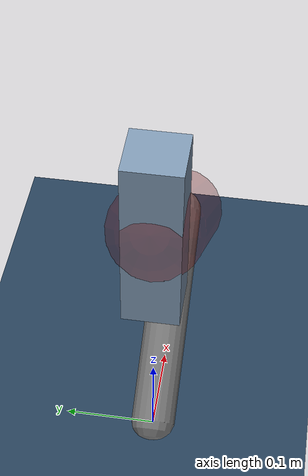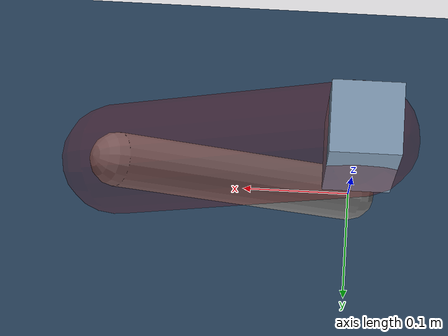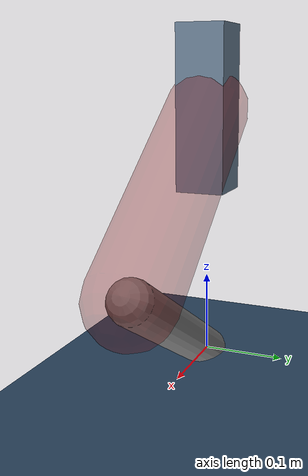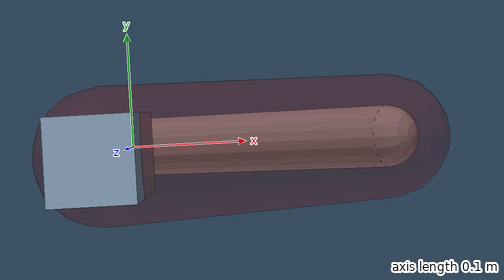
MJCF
<mujoco model="Hopper2D">
	<compiler inertiafromgeom="true" angle="radian" />
	<option timestep="0.001" integrator="implicit" cone="elliptic" solver="Newton" tolerance="1e-10" />

	<default>
		<geom contype="1" conaffinity="1" condim="3" friction="2 0.005 0.0001" solref="0.005 1" />
		<joint limited="true" damping="0.1" />
	</default>

	<asset>
		<texture name="skybox" type="skybox" builtin="gradient" rgb1=".4 .6 .8" rgb2="0 0 0" width="800" height="800" />
		<texture name="grid" type="2d" builtin="checker" rgb1=".1 .2 .3" rgb2=".2 .3 .4" width="300" height="300" mark="edge" markrgb=".2 .3 .4" />
		<material name="ground" texture="grid" texrepeat="1 1" texuniform="true" reflectance="0.1" />
		<material name="leg" rgba="0.5 0.6 0.7 1" />
	</asset>

	<worldbody>

		<geom name="floor" type="plane" size="5 5 0.25" material="ground" />

		<light directional="false" diffuse="0.8 0.8 0.8" specular="0.3 0.3 0.3" pos="0 0 2" dir="0 0 -1" />
		<light mode="targetbodycom" target="base" directional="false" diffuse="0.8 0.8 0.8" specular="0.3 0.3 0.3" pos="0 0 2" dir="0 0 -1" />

		<camera name="fixed" pos="0 -2 1" xyaxes="1 0 0 0 0 1" />
		<camera name="tracking" mode="trackcom" pos="0 -3 1" />

		<body name="root" pos="0 0 0.3109879695410554">
			<joint name="slide_x" type="slide" axis="1 0 0" range="-100 100" />
			<joint name="slide_z" type="slide" axis="0 0 1" range="0 10" />

			<body name="base" pos="0 0 0">
				<geom name="torso" type="box" size="0.03 0.03 0.1" mass="2.816" material="leg" />

				<body name="link1" pos="0 0 0" euler="0 0.6843581054934713 0">
					<joint type="hinge" axis="0 -1 0" pos="0 0 0" name="hinge1" limited="true" range="-3.14 3.14" stiffness="0" damping="0.1" />
					<geom name="thigh" type="capsule" fromto="0 0 0 0.2782679603584357 0 0" size="0.05" rgba="0.5 0 0 0.3" mass="0.9305234929677763" />

					<body name="link2" pos="0.2782679603584357 0 0" euler="0 1.8975750198868195 0">
						<joint type="hinge" axis="0 -1 0" pos="0 0 0" name="hinge2" limited="true" range="-3.14 3.14" stiffness="0" damping="0.1" />
						<geom name="shank" type="capsule" fromto="0 0 0 0.25442510458248757 0 0" size="0.025" mass="0.44614008366599006" />

					</body>
				</body>
			</body>
		</body>
	</worldbody>

	<actuator>
		<motor name="torque1" joint="hinge1" ctrlrange="-109.08007953536823 109.08007953536823" ctrllimited="true" gear="1" />
		<motor name="torque2" joint="hinge2" ctrlrange="-60.52904063824342 60.52904063824342" ctrllimited="true" gear="1" />
	</actuator>
</mujoco>
